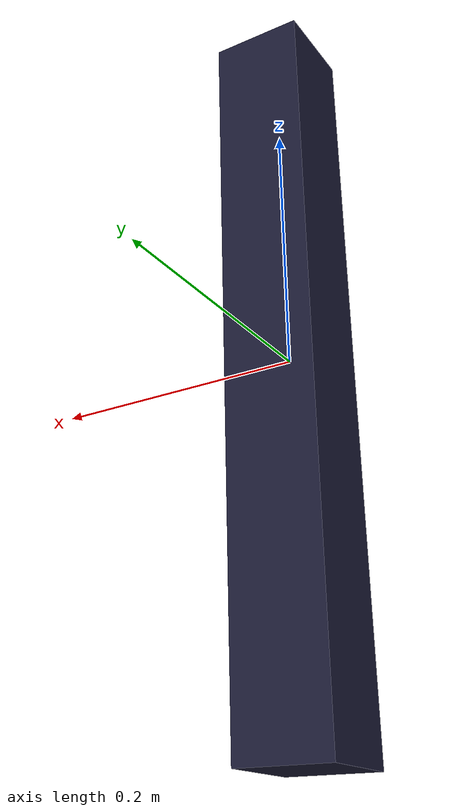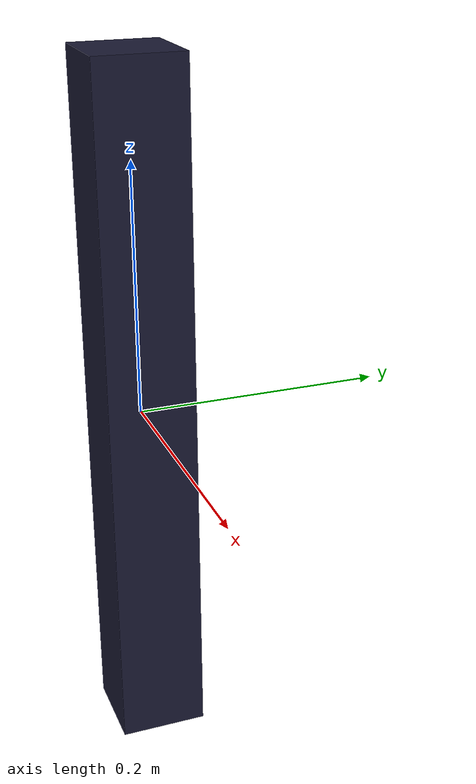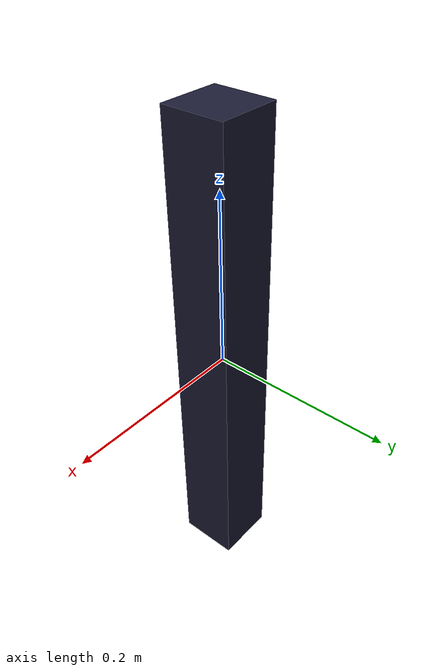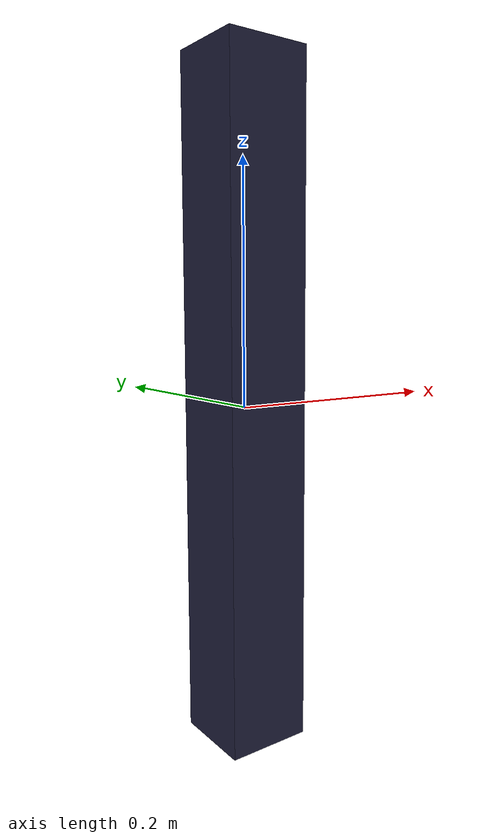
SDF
<?xml version="1.0" ?>
<sdf version="1.6">
  <model name="regolo8">
    <static>false</static>
    <link name="link">
      <collision name="collision">
        <geometry>
          <mesh>
            <uri>model://regolo8/meshes/regolo8.stl</uri>
            <scale>0.07 0.07 0.07</scale>
          </mesh>
        </geometry>
      </collision>
      <visual name="visual">
        <geometry>
          <mesh>
            <uri>model://regolo8/meshes/regolo8.stl</uri>
            <scale>0.07 0.07 0.07</scale>
          </mesh>
        </geometry>
	<material>
            <ambient>0.55 0.4 0.1 1</ambient>
          <diffuse>0.1 0.1 0.2 1</diffuse>
            <specular>0 0 0 0</specular>
            <emissive>0 0 0 1</emissive>
          </material>
      </visual>
      <inertial>
        <mass>5.0</mass>
        <inertia>
          <ixx>1</ixx>
          <ixy>0.0</ixy>
          <ixz>0.0</ixz>
          <iyy>1</iyy>
          <iyz>0.0</iyz>
          <izz>1</izz>
        </inertia>
      </inertial>
    </link>
  </model>
</sdf>
